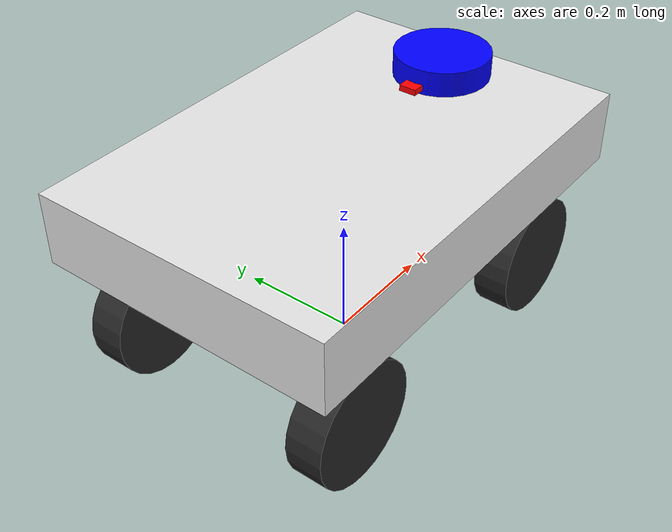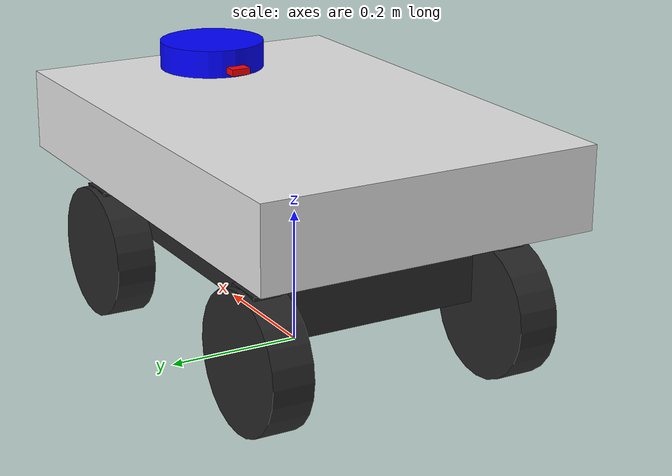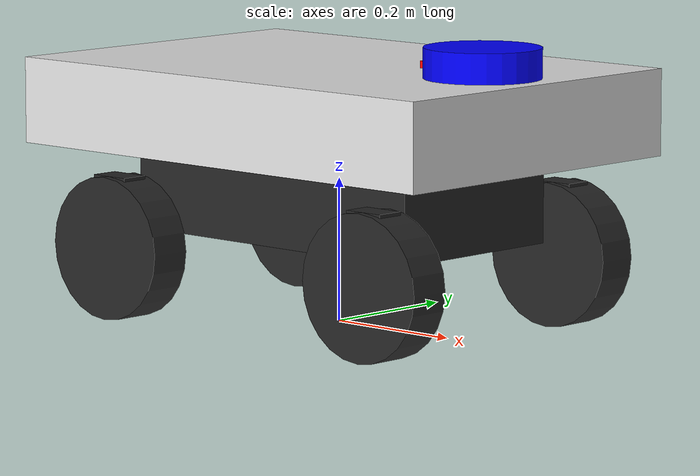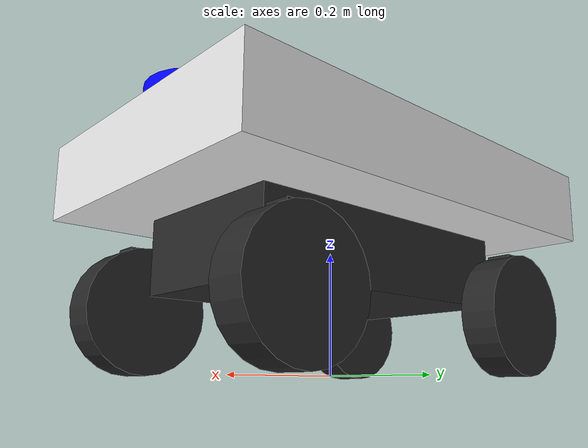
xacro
<?xml version="1.0" ?>
<robot name="manda" xmlns:xacro="http://www.ros.org/wiki/xacro">

  <material name="black">
    <color rgba="0.15 0.15 0.15 1.0"/>
  </material>
  <material name="white">
    <color rgba="0.9 0.9 0.9 1.0"/>
  </material>
  <material name="red">
    <color rgba="1.0 0.0 0.0 1.0"/>
  </material>
  <material name="blue">
    <color rgba="0.0 0.0 1.0 1.0"/>
  </material>

  <link name="base_footprint"/>

  <link name="base_link"/>
  <joint name="footprint_to_base" type="fixed">
    <origin rpy="0 0 0" xyz="0 0 0"/>
    <parent link="base_footprint"/>
    <child link="base_link"/>
  </joint>

  <link name="body">
    <visual>
      <origin xyz="0 0 0.06" rpy="0 0 0"/>
      <geometry><box size="0.73 0.50 0.12"/></geometry>
      <material name="white"/>
    </visual>
    <visual>
      <origin xyz="0 0 -0.06" rpy="0 0 0"/>
      <geometry><box size="0.50 0.28 0.12"/></geometry>
      <material name="black"/>
    </visual>
    <collision>
      <origin xyz="0 0 0.0625" rpy="0 0 0"/>
      <geometry><box size="0.73 0.50 0.365"/></geometry>
    </collision>
    <inertial>
      <origin xyz="0 0 -0.15" rpy="0 0 0"/>
      <mass value="90.0"/>
      <inertia ixx="2.0" ixy="0" ixz="0" iyy="4.0" iyz="0" izz="5.0"/>
    </inertial>
  </link>

  <joint name="base_joint" type="fixed">
    <origin rpy="0 0 0" xyz="0 0 0.24"/>
    <parent link="base_link"/>
    <child link="body"/>
  </joint>

  <!-- ===== 底盘主体 (body) 摩擦/碰撞属性 ===== -->
  <!-- 实车模式：不需要 Gazebo 标签，已删除 -->

  <link name="laser_link">
    <visual>
      <geometry><cylinder length="0.025" radius="0.025"/></geometry>
      <material name="blue"/>
    </visual>
    <collision>
      <geometry><cylinder length="0.025" radius="0.025"/></geometry>
    </collision>
    <inertial>
      <mass value="0.1"/>
      <inertia ixx="0.0001" ixy="0" ixz="0" iyy="0.0001" iyz="0" izz="0.0001"/>
    </inertial>
  </link>
  <joint name="laser_joint" type="fixed">
    <!-- 2026-09-16 实测安装: 中心距车头端面(x=+0.365) 103mm -> x=0.262;
         高度 = 车体顶面(z=0.36) 上方 11.6mm -> z=0.3716; 左右居中 y=0 -->
    <origin rpy="0 0 0" xyz="0.262 0 0.3716"/> <parent link="base_link"/>
    <child link="laser_link"/>
  </joint>

  <link name="imu_link">
    <visual>
      <!-- IMU 小板 29.6 x 44.3mm: 短边(29.6)与车头平行 -> 沿 y; 长边(44.3)沿 x -->
      <geometry><box size="0.0443 0.0296 0.01"/></geometry>
      <material name="red"/>
    </visual>
    <inertial>
      <mass value="0.01"/>
      <inertia ixx="0.00001" ixy="0" ixz="0" iyy="0.00001" iyz="0" izz="0.00001"/>
    </inertial>
  </link>
  <!-- IMU 独立安装在底盘 base_link 上（不再挂在废弃的速腾雷达下） -->
  <!-- 2026-09-16 实测安装: 板后边缘距车头端面(x=+0.365) 202mm (=144+58)
       -> 后边缘 x=0.163; 长边 44.3mm 沿 x -> 中心 x = 0.163 + 0.0443/2 = 0.18515;
       高度与雷达一致 -> z=0.3716; 左右居中 y=0 -->
  <joint name="imu_joint" type="fixed">
    <origin rpy="0 0 0" xyz="0.18515 0 0.3716"/>
    <parent link="base_link"/>
    <child link="imu_link"/>
  </joint>

  <xacro:macro name="wheel_module" params="prefix x_offset y_offset">

    <link name="${prefix}_wheel_steer">
      <visual>
        <origin rpy="0 0 0" xyz="0 0 -0.05"/>
        <geometry><box size="0.06 0.04 0.10"/></geometry>
        <material name="black"/>
      </visual>
      <inertial>
        <mass value="1.0"/>
        <inertia ixx="0.005" ixy="0" ixz="0" iyy="0.005" iyz="0" izz="0.005"/>
      </inertial>
    </link>
    <joint name="${prefix}_wheel_steer_joint" type="revolute">
      <origin rpy="0 0 0" xyz="${x_offset} ${y_offset} -0.04"/>
      <parent link="body"/>
      <child link="${prefix}_wheel_steer"/>
      <axis xyz="0 0 1"/>
      <limit lower="-0.75" upper="0.75" effort="10" velocity="1.0"/>  <!-- ±43°, 与底盘 max_steer_angle 一致 -->
    </joint>

    <link name="${prefix}_wheel_rotor">
      <visual>
        <geometry>
          <cylinder length="0.06" radius="0.10"/>
        </geometry>
        <material name="black"/>
      </visual>
      <collision>
        <geometry>
          <sphere radius="0.10"/>
        </geometry>
      </collision>
      <inertial>
        <mass value="4.0"/>
        <inertia ixx="0.012" ixy="0" ixz="0" iyy="0.012" iyz="0" izz="0.02"/>
      </inertial>
    </link>

    <joint name="${prefix}_wheel_rotor_joint" type="continuous">
      <origin rpy="-1.570796 0 0" xyz="0 0 -0.10"/>
      <parent link="${prefix}_wheel_steer"/>
      <child link="${prefix}_wheel_rotor"/>
      <axis xyz="0 1 0"/>
    </joint>

    <!-- 实车模式：已删除 wheel_rotor 的 Gazebo 摩擦标签 -->
  </xacro:macro>

  <xacro:wheel_module prefix="front_left" x_offset="0.24" y_offset="0.19" />
  <xacro:wheel_module prefix="front_right" x_offset="0.24" y_offset="-0.19" />
  <xacro:wheel_module prefix="rear_left" x_offset="-0.24" y_offset="0.19" />
  <xacro:wheel_module prefix="rear_right" x_offset="-0.24" y_offset="-0.19" />

  <!-- ===== 实车速腾雷达 (rslidar) 固定安装 ===== -->
  <!-- 安装位置: 车顶中心向前 10.5cm, 垫 0.45cm 塑料板, 方向与 base_link 一致 -->
  <link name="rslidar">
    <visual>
      <geometry><cylinder length="0.06" radius="0.08"/></geometry>
      <material name="blue"/>
    </visual>
    <inertial>
      <mass value="1.0"/>
      <inertia ixx="0.001" ixy="0" ixz="0" iyy="0.001" iyz="0" izz="0.001"/>
    </inertial>
  </link>
  <joint name="rslidar_joint" type="fixed">
    <!-- 与 laser_link 同安装位置 (同一雷达支架), 保持一致 -->
    <origin rpy="0 0 0" xyz="0.262 0 0.3716"/>
    <parent link="base_link"/>
    <child link="rslidar"/>
  </joint>

  <!-- ===== 实车模式：以下已删除所有 Gazebo 传感器插件和 ros2_control 硬件接口 ===== -->

</robot>
